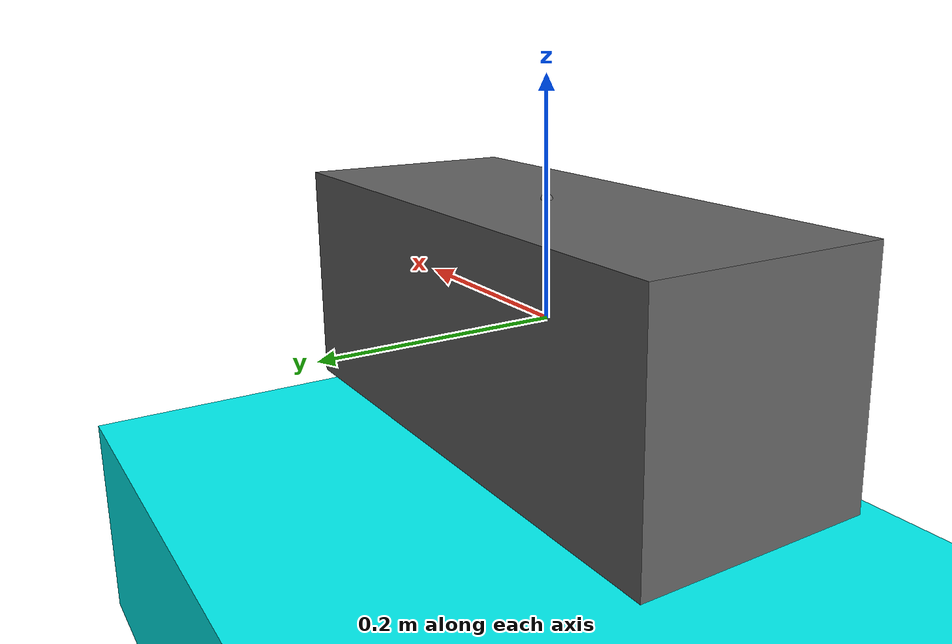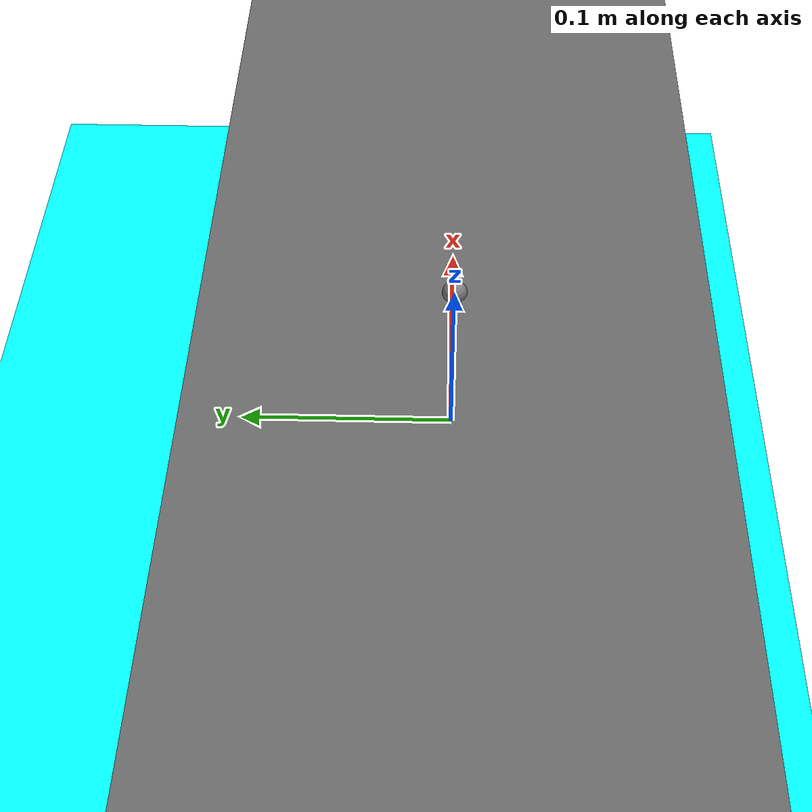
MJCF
<mujoco model="test">
  <option timestep="0.02" />

  <asset>
    <texture name="blue_grid" type="2d" builtin="checker" rgb1=".02 .14 .44" rgb2=".27 .55 1" width="300" height="300" mark="edge" markrgb="1 1 1"/>
    <material name="blue_grid" texture="blue_grid" texrepeat="1 1" texuniform="true" reflectance=".2"/>
  </asset>

  <worldbody>
    <body>
      <geom mass="0" name="floor" pos="0 0 -0.25" condim="3" size="10.0 10.0 0.10" rgba="0 1 1 1" type="box" material="blue_grid"/>
    </body>

    <body name="body" pos="0 0 0">
      <joint name="body_x" damping="4" type="slide" axis="1 0 0" />
      <joint name="body_y" damping="4" type="slide" axis="0 1 0" />
      <joint name="body_z" damping="4" type="slide" axis="0 0 1" />
      <geom name="body_geom" type="box" size="0.25 0.1 0.1" mass="0.1" rgba=".4 .4 .4 1" friction="0"/>
      <site pos="0 0 0.1" name="body_site"/>
    </body>
  </worldbody>

  <sensor>
    <framepos name="body_pos" objtype="site" objname="body_site"/>
  </sensor>

</mujoco>
